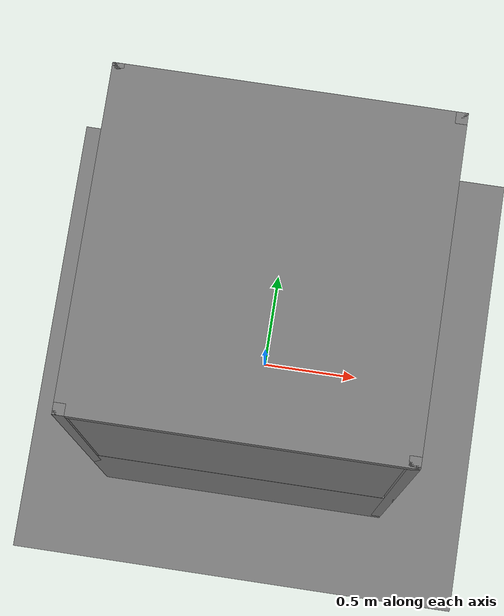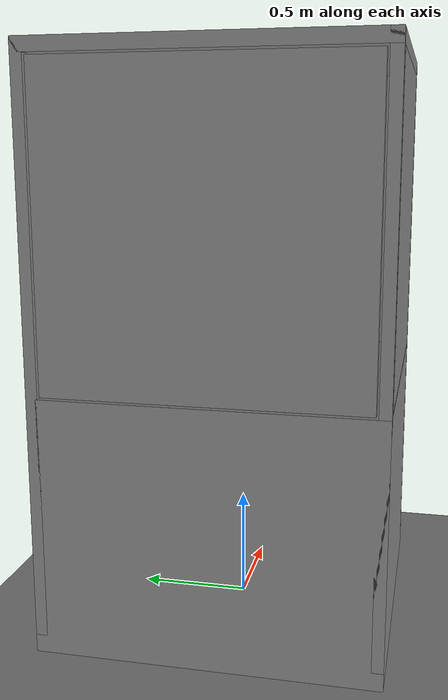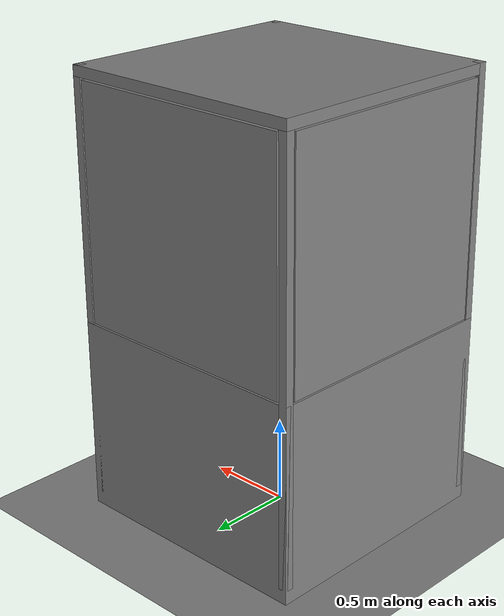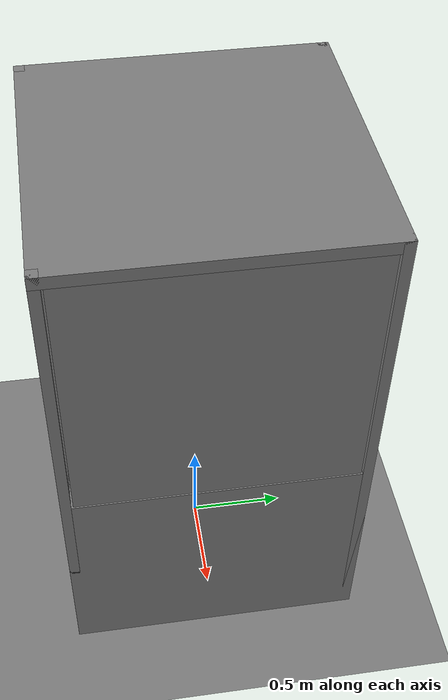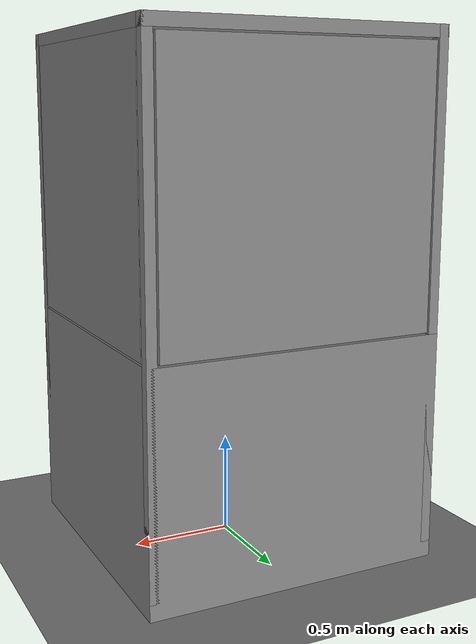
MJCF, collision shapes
<mujoco model="aic_world">
  <compiler angle="radian"/>

  <option gravity="0 0 -9.8" magnetic="5.5645e-06 2.28758e-05 -4.23884e-05"/>

  <visual>
    <headlight ambient="0 0 0" diffuse="0 0 0" specular="0 0 0"/>
  </visual>

  <default>
    <default class="world_default"/>
    <default class="cable_default">
      <joint damping="0.2"/>
    </default>
    <default class="sc_port_default">
      <geom friction="0.5 0.5"/>
    </default>
    <default class="nic_card_default">
      <geom friction="0.1 0.005 0.1"/>
    </default>
  </default>

  <extension>
    <plugin plugin="mujoco.elasticity.cable">
      <instance name="composite">
        <config key="twist" value="1e2"/>
        <config key="bend" value="4e1"/>
      </instance>
    </plugin>
  </extension>

  <asset>
    <texture type="2d" colorspace="linear" name="texture_004c99bdba6ed245cd977ad2f24fce7b24967b1013515a98fda1c10cb547bb0b_floor_visual_Plane" file="004c99bdba6ed245cd977ad2f24fce7b24967b1013515a98fda1c10cb547bb0b_floor_visual_b3a94635-54d6beff6424435d3828cb4c8a1278d9ea3964b0.png"/>
    <texture type="2d" colorspace="linear" name="texture_20c3c21d33ad91c02acd28d29c6619e4def43e4ad97f9963f1f40c69556a8667_nic_card_visual_merged_0" file="20c3c21d33ad91c02acd28d29c6619e4def43e4ad97f9963f1f40c69556a8667_nic_card_visual_45ced356-decb3c11fd49e8be2155fa2b1c64d354b4b1809a.png"/>
    <texture type="2d" colorspace="linear" name="texture_20c3c21d33ad91c02acd28d29c6619e4def43e4ad97f9963f1f40c69556a8667_nic_card_visual_merged_1" file="20c3c21d33ad91c02acd28d29c6619e4def43e4ad97f9963f1f40c69556a8667_nic_card_visual_39dce63a-b1ab28e3f7e42255c5bb13a337e50008ebdbcb02.png"/>
    <texture type="2d" colorspace="linear" name="texture_70f18413e443c6ac8bc02b557eb6c2925e90c411d72d13ae42f85ac7d3aa0981_sc_plug_visual_merged_0" file="70f18413e443c6ac8bc02b557eb6c2925e90c411d72d13ae42f85ac7d3aa0981_sc_plug_visual_5875f865-48f62b2f4840d852c7f39a01e6c183037dc1485b.png"/>
    <texture type="2d" colorspace="linear" name="texture_6d489da5295e168562f19bbb4c2b9fbdac898c9ba5e02eb997d4ee70d7291580_lc_plug_visual_merged_0" file="6d489da5295e168562f19bbb4c2b9fbdac898c9ba5e02eb997d4ee70d7291580_lc_plug_visual_03dabf32-0905e8a8aa368516e682f6ec84258100cdb4efef.png"/>
    <texture type="2d" colorspace="linear" name="texture_2564bbe0f5722ff8251bd203ef80c312faa7946fac1e29b125ba85a355c0acc4_sfp_module_visual_Body.005" file="2564bbe0f5722ff8251bd203ef80c312faa7946fac1e29b125ba85a355c0acc4_sfp_module_visual_8fc63b58-7471eafc55dcb668ae68adfe70a147b363ba3be9.png"/>
    <texture type="2d" colorspace="linear" name="texture_2564bbe0f5722ff8251bd203ef80c312faa7946fac1e29b125ba85a355c0acc4_sfp_module_visual_Body.005_1" file="2564bbe0f5722ff8251bd203ef80c312faa7946fac1e29b125ba85a355c0acc4_sfp_module_visual_1f09e86a-a4dc4a72bd6e778067310898a5c179607fd78966.png"/>
    <material name="material_2d9391f98201003f225acde4d09d36aa89e5d4dc4e11c4b1d33184f277d08bb1_enclosure_visual_V1014952.001" class="world_default" shininess="30" rgba="0.290196 0.290196 0.290196 1"/>
    <material name="material_2d9391f98201003f225acde4d09d36aa89e5d4dc4e11c4b1d33184f277d08bb1_enclosure_visual_V1014952.001_1" class="world_default" shininess="30" rgba="0.129412 0.129412 0.133333 1"/>
    <material name="material_2d9391f98201003f225acde4d09d36aa89e5d4dc4e11c4b1d33184f277d08bb1_light_visual_Plane.001" class="world_default" shininess="30" rgba="0.5 0.5 0.5 1"/>
    <material name="material_004c99bdba6ed245cd977ad2f24fce7b24967b1013515a98fda1c10cb547bb0b_floor_visual_Plane" class="world_default" texture="texture_004c99bdba6ed245cd977ad2f24fce7b24967b1013515a98fda1c10cb547bb0b_floor_visual_Plane" shininess="30" rgba="0.5 0.5 0.5 1"/>
    <material name="material_004c99bdba6ed245cd977ad2f24fce7b24967b1013515a98fda1c10cb547bb0b_walls_visual_Curve.001" class="world_default" shininess="30" rgba="0.0196078 0.0196078 0.0196078 1"/>
    <material name="material_004c99bdba6ed245cd977ad2f24fce7b24967b1013515a98fda1c10cb547bb0b_walls_visual_merged_1" class="world_default" shininess="30" rgba="0.262745 0.262745 0.262745 1"/>
    <material name="material_004c99bdba6ed245cd977ad2f24fce7b24967b1013515a98fda1c10cb547bb0b_walls_visual_Plane.003_1" class="world_default" shininess="30" rgba="0.8 0.8 0.8 1"/>
    <material name="material_004c99bdba6ed245cd977ad2f24fce7b24967b1013515a98fda1c10cb547bb0b_walls_visual_Plane.002" class="world_default" shininess="30" rgba="0.207843 0.207843 0.207843 1"/>
    <material name="material_fe59c208e1c9f790f73d46922512168041cc2a8447a159d98596e558a7dea8a9_base_visual_ISO_4762_-_M3_x_8.019" class="world_default" shininess="30" rgba="0.0352941 0.0352941 0.0313726 1"/>
    <material name="material_fe59c208e1c9f790f73d46922512168041cc2a8447a159d98596e558a7dea8a9_base_visual_ISO_4762_-_M3_x_8.019_1" class="world_default" shininess="30" rgba="0.0313726 0.0313726 0.0313726 1"/>
    <material name="material_fe59c208e1c9f790f73d46922512168041cc2a8447a159d98596e558a7dea8a9_base_visual_ISO_4762_-_M3_x_8.019_2" class="world_default" shininess="30" rgba="0.215686 0 0.215686 1"/>
    <material name="material_20c3c21d33ad91c02acd28d29c6619e4def43e4ad97f9963f1f40c69556a8667_nic_card_mount_visual_ISO_4762_-_M2_x_8.054" class="world_default" shininess="30" rgba="0.0352941 0.0352941 0.0313726 1"/>
    <material name="material_20c3c21d33ad91c02acd28d29c6619e4def43e4ad97f9963f1f40c69556a8667_nic_card_mount_visual_ISO_4762_-_M2_x_8.054_1" class="world_default" shininess="30" rgba="0.0313726 0.0313726 0.0313726 1"/>
    <material name="material_20c3c21d33ad91c02acd28d29c6619e4def43e4ad97f9963f1f40c69556a8667_nic_card_visual_merged_0" class="world_default" texture="texture_20c3c21d33ad91c02acd28d29c6619e4def43e4ad97f9963f1f40c69556a8667_nic_card_visual_merged_0" shininess="30" rgba="0.5 0.5 0.5 1"/>
    <material name="material_20c3c21d33ad91c02acd28d29c6619e4def43e4ad97f9963f1f40c69556a8667_nic_card_visual_merged_1" class="world_default" texture="texture_20c3c21d33ad91c02acd28d29c6619e4def43e4ad97f9963f1f40c69556a8667_nic_card_visual_merged_1" shininess="30" rgba="0.5 0.5 0.5 1"/>
    <material name="material_20c3c21d33ad91c02acd28d29c6619e4def43e4ad97f9963f1f40c69556a8667_nic_card_visual_Plane.029" class="world_default" shininess="30" rgba="0.0235294 0.0392157 0.0117647 1"/>
    <material name="material_20c3c21d33ad91c02acd28d29c6619e4def43e4ad97f9963f1f40c69556a8667_nic_card_visual_Cube.007" class="world_default" shininess="30" rgba="0 0 0 1"/>
    <material name="material_70f18413e443c6ac8bc02b557eb6c2925e90c411d72d13ae42f85ac7d3aa0981_sc_plug_visual_merged_0" class="world_default" texture="texture_70f18413e443c6ac8bc02b557eb6c2925e90c411d72d13ae42f85ac7d3aa0981_sc_plug_visual_merged_0" shininess="30" rgba="0.5 0.5 0.5 1"/>
    <material name="material_6d489da5295e168562f19bbb4c2b9fbdac898c9ba5e02eb997d4ee70d7291580_lc_plug_visual_merged_0" class="world_default" texture="texture_6d489da5295e168562f19bbb4c2b9fbdac898c9ba5e02eb997d4ee70d7291580_lc_plug_visual_merged_0" shininess="30" rgba="0.5 0.5 0.5 1"/>
    <material name="material_2564bbe0f5722ff8251bd203ef80c312faa7946fac1e29b125ba85a355c0acc4_sfp_module_visual_Body.005" class="world_default" texture="texture_2564bbe0f5722ff8251bd203ef80c312faa7946fac1e29b125ba85a355c0acc4_sfp_module_visual_Body.005" shininess="30" rgba="0.5 0.5 0.5 1"/>
    <material name="material_2564bbe0f5722ff8251bd203ef80c312faa7946fac1e29b125ba85a355c0acc4_sfp_module_visual_Body.005_1" class="world_default" texture="texture_2564bbe0f5722ff8251bd203ef80c312faa7946fac1e29b125ba85a355c0acc4_sfp_module_visual_Body.005_1" shininess="30" rgba="0.5 0.5 0.5 1"/>
    <mesh name="2d9391f98201003f225acde4d09d36aa89e5d4dc4e11c4b1d33184f277d08bb1_enclosure_visual_V1014952.001" class="world_default" content_type="model/obj" file="2d9391f98201003f225acde4d09d36aa89e5d4dc4e11c4b1d33184f277d08bb1_enclosure_visual_V1014952.001-c990efe7b9dfe87aa065fd6eb3960ce051ae2aef.obj" inertia="shell"/>
    <mesh name="2d9391f98201003f225acde4d09d36aa89e5d4dc4e11c4b1d33184f277d08bb1_enclosure_visual_V1014952.001_1" class="world_default" content_type="model/obj" file="2d9391f98201003f225acde4d09d36aa89e5d4dc4e11c4b1d33184f277d08bb1_enclosure_visual_V1014952.001_1-807e07de06af157c84b994a232617507a7059420.obj" inertia="shell"/>
    <mesh name="2d9391f98201003f225acde4d09d36aa89e5d4dc4e11c4b1d33184f277d08bb1_light_visual_Plane.001" class="world_default" content_type="model/obj" file="2d9391f98201003f225acde4d09d36aa89e5d4dc4e11c4b1d33184f277d08bb1_light_visual_Plane.001-a8a774a80bc239d73769a498eae528b206eebcb0.obj" inertia="shell"/>
    <mesh name="004c99bdba6ed245cd977ad2f24fce7b24967b1013515a98fda1c10cb547bb0b_floor_visual_Plane" class="world_default" content_type="model/obj" file="004c99bdba6ed245cd977ad2f24fce7b24967b1013515a98fda1c10cb547bb0b_floor_visual_Plane-4dc7f6150ad7c239769a0860a01efb2015657aea.obj" inertia="shell"/>
    <mesh name="004c99bdba6ed245cd977ad2f24fce7b24967b1013515a98fda1c10cb547bb0b_walls_visual_Curve.001" class="world_default" content_type="model/obj" file="004c99bdba6ed245cd977ad2f24fce7b24967b1013515a98fda1c10cb547bb0b_walls_visual_Curve.001-4d7c79ac2e958832fdb15589262141ca1b80d3a5.obj" inertia="shell"/>
    <mesh name="004c99bdba6ed245cd977ad2f24fce7b24967b1013515a98fda1c10cb547bb0b_walls_visual_merged_1" class="world_default" content_type="model/obj" file="004c99bdba6ed245cd977ad2f24fce7b24967b1013515a98fda1c10cb547bb0b_walls_visual_merged_1-359a22140d528747936e80bedf90e1437a177a9f.obj" inertia="shell"/>
    <mesh name="004c99bdba6ed245cd977ad2f24fce7b24967b1013515a98fda1c10cb547bb0b_walls_visual_Plane.003_1" class="world_default" content_type="model/obj" file="004c99bdba6ed245cd977ad2f24fce7b24967b1013515a98fda1c10cb547bb0b_walls_visual_Plane.003_1-cd05ed21fa19a2784fb772d7519abf7c31c8b85f.obj" inertia="shell"/>
    <mesh name="004c99bdba6ed245cd977ad2f24fce7b24967b1013515a98fda1c10cb547bb0b_walls_visual_Plane.002" class="world_default" content_type="model/obj" file="004c99bdba6ed245cd977ad2f24fce7b24967b1013515a98fda1c10cb547bb0b_walls_visual_Plane.002-ee4f781765eec46c2256d941981732d4b1857f24.obj" inertia="shell"/>
    <mesh name="fe59c208e1c9f790f73d46922512168041cc2a8447a159d98596e558a7dea8a9_base_visual_ISO_4762_-_M3_x_8.019" class="world_default" content_type="model/obj" file="fe59c208e1c9f790f73d46922512168041cc2a8447a159d98596e558a7dea8a9_base_visual_ISO_4762_-_M3_x_8.019-f814bb518c42769543ab6246809f3fe4af5c2b64.obj" inertia="shell"/>
    <mesh name="fe59c208e1c9f790f73d46922512168041cc2a8447a159d98596e558a7dea8a9_base_visual_ISO_4762_-_M3_x_8.019_1" class="world_default" content_type="model/obj" file="fe59c208e1c9f790f73d46922512168041cc2a8447a159d98596e558a7dea8a9_base_visual_ISO_4762_-_M3_x_8.019_1-0b276ba9910a7642121235b62d2afc47c3995782.obj" inertia="shell"/>
    <mesh name="fe59c208e1c9f790f73d46922512168041cc2a8447a159d98596e558a7dea8a9_base_visual_ISO_4762_-_M3_x_8.019_2" class="world_default" content_type="model/obj" file="fe59c208e1c9f790f73d46922512168041cc2a8447a159d98596e558a7dea8a9_base_visual_ISO_4762_-_M3_x_8.019_2-7b96569be9572803417c5650ee83c9c883b44191.obj" inertia="shell"/>
    <mesh name="20c3c21d33ad91c02acd28d29c6619e4def43e4ad97f9963f1f40c69556a8667_nic_card_mount_visual_ISO_4762_-_M2_x_8.054" class="world_default" content_type="model/obj" file="20c3c21d33ad91c02acd28d29c6619e4def43e4ad97f9963f1f40c69556a8667_nic_card_mount_visual_ISO_4762_-_M2_x_8.054-865f98896565b646973302f5cc3bb20e1474682a.obj" inertia="shell"/>
    <mesh name="20c3c21d33ad91c02acd28d29c6619e4def43e4ad97f9963f1f40c69556a8667_nic_card_mount_visual_ISO_4762_-_M2_x_8.054_1" class="world_default" content_type="model/obj" file="20c3c21d33ad91c02acd28d29c6619e4def43e4ad97f9963f1f40c69556a8667_nic_card_mount_visual_ISO_4762_-_M2_x_8.054_1-5adcf23490bd5794ededbd17ac1064f40ca2f1d8.obj" inertia="shell"/>
    <mesh name="20c3c21d33ad91c02acd28d29c6619e4def43e4ad97f9963f1f40c69556a8667_nic_card_visual_merged_0" class="world_default" content_type="model/obj" file="20c3c21d33ad91c02acd28d29c6619e4def43e4ad97f9963f1f40c69556a8667_nic_card_visual_merged_0-b45f6200bfaa68e87732b114c99af8b477e66413.obj" inertia="shell"/>
    <mesh name="20c3c21d33ad91c02acd28d29c6619e4def43e4ad97f9963f1f40c69556a8667_nic_card_visual_merged_1" class="world_default" content_type="model/obj" file="20c3c21d33ad91c02acd28d29c6619e4def43e4ad97f9963f1f40c69556a8667_nic_card_visual_merged_1-0e349b7b61b9f4e172feb5320f1e8146f966f938.obj" inertia="shell"/>
    <mesh name="20c3c21d33ad91c02acd28d29c6619e4def43e4ad97f9963f1f40c69556a8667_nic_card_visual_Plane.029" class="world_default" content_type="model/obj" file="20c3c21d33ad91c02acd28d29c6619e4def43e4ad97f9963f1f40c69556a8667_nic_card_visual_Plane.029-3e628f059a97b4e803370a2b5e0abfcfac063972.obj" inertia="shell"/>
    <mesh name="20c3c21d33ad91c02acd28d29c6619e4def43e4ad97f9963f1f40c69556a8667_nic_card_visual_Cube.007" class="world_default" content_type="model/obj" file="20c3c21d33ad91c02acd28d29c6619e4def43e4ad97f9963f1f40c69556a8667_nic_card_visual_Cube.007-f8fbe4a2582482ceb99cb3e87bdf6d5a3daf05ec.obj" inertia="shell"/>
    <mesh name="70f18413e443c6ac8bc02b557eb6c2925e90c411d72d13ae42f85ac7d3aa0981_sc_plug_visual_merged_0" class="world_default" content_type="model/obj" file="70f18413e443c6ac8bc02b557eb6c2925e90c411d72d13ae42f85ac7d3aa0981_sc_plug_visual_merged_0-67f94accf247f722dd4954d7448d7956402901f2.obj" inertia="shell"/>
    <mesh name="6d489da5295e168562f19bbb4c2b9fbdac898c9ba5e02eb997d4ee70d7291580_lc_plug_visual_merged_0" class="world_default" content_type="model/obj" file="6d489da5295e168562f19bbb4c2b9fbdac898c9ba5e02eb997d4ee70d7291580_lc_plug_visual_merged_0-fdaf59710fc3cc118a7df05add4ff4205edda4ef.obj" inertia="shell"/>
    <mesh name="2564bbe0f5722ff8251bd203ef80c312faa7946fac1e29b125ba85a355c0acc4_sfp_module_visual_Body.005" class="world_default" content_type="model/obj" file="2564bbe0f5722ff8251bd203ef80c312faa7946fac1e29b125ba85a355c0acc4_sfp_module_visual_Body.005-f93147e1e403de321fb70c06a4b1e00f20feb9fd.obj" inertia="shell"/>
    <mesh name="2564bbe0f5722ff8251bd203ef80c312faa7946fac1e29b125ba85a355c0acc4_sfp_module_visual_Body.005_1" class="world_default" content_type="model/obj" file="2564bbe0f5722ff8251bd203ef80c312faa7946fac1e29b125ba85a355c0acc4_sfp_module_visual_Body.005_1-4af964a95522e2593eb6381eca4f09ef239782c7.obj" inertia="shell"/>
  </asset>

  <worldbody>
    <light name="enclosure_light" class="world_default" pos="0 0 2.5" dir="0 0 -1" intensity="0.4" range="2" attenuation="1 0.01 0.001" cutoff="114.592" exponent="0.993023" diffuse="1 1 1" specular="0.1 0.1 0.1"/>
    <light name="ceiling_01" class="world_default" pos="2 2 6" dir="0 0 -1" intensity="2" range="9" castshadow="false" attenuation="1 0.01 0.001" cutoff="360" diffuse="1 1 1" specular="0.1 0.1 0.1"/>
    <light name="ceiling_02" class="world_default" pos="-2 -2 6" dir="0 0 -1" intensity="2" range="9" castshadow="false" attenuation="1 0.01 0.001" cutoff="360" diffuse="1 1 1" specular="0.1 0.1 0.1"/>
    <body name="enclosure_link">
      <inertial pos="0 0 0" mass="1" diaginertia="1 1 1"/>
      <geom name="v1015026001_collider_box" class="world_default" size="0.75 0.569492 0.75" pos="-0.010998 0.009283 0.569706" quat="1.22475e-07 -1.22474e-07 0.707107 0.707107" type="box" group="3"/>
      <geom name="v1015028001_collider_box" class="world_default" size="0.0254 0.0254 1.25" pos="0.713602 0.733883 1.3292" quat="1.73205e-07 0 0 -1" type="box" group="3"/>
      <geom name="v1015013001_collider_box" class="world_default" size="0.0304 0.75 0.75" pos="-0.010998 0.009283 2.5488" quat="0.707107 0 -0.707107 0" type="box" group="3"/>
      <geom name="v1015027_collider_box" class="world_default" size="0.0254 0.0254 1.25" pos="-0.735598 0.733883 1.3292" quat="1.73205e-07 0 0 -1" type="box" group="3"/>
      <geom name="v1015029_collider_box" class="world_default" size="0.0254 0.0254 1.25" pos="-0.735598 -0.715317 1.3292" quat="0 1.73205e-07 -1 -1.73205e-07" type="box" group="3"/>
      <geom name="v1015030_collider_box" class="world_default" size="0.0254 0.0254 1.25" pos="0.713602 -0.715317 1.3292" quat="1.73205e-07 0 0 -1" type="box" group="3"/>
      <geom name="enclosure_visual" class="world_default" type="mesh" contype="0" conaffinity="0" material="material_2d9391f98201003f225acde4d09d36aa89e5d4dc4e11c4b1d33184f277d08bb1_enclosure_visual_V1014952.001" mesh="2d9391f98201003f225acde4d09d36aa89e5d4dc4e11c4b1d33184f277d08bb1_enclosure_visual_V1014952.001"/>
      <geom name="enclosure_visual_0" class="world_default" type="mesh" contype="0" conaffinity="0" material="material_2d9391f98201003f225acde4d09d36aa89e5d4dc4e11c4b1d33184f277d08bb1_enclosure_visual_V1014952.001_1" mesh="2d9391f98201003f225acde4d09d36aa89e5d4dc4e11c4b1d33184f277d08bb1_enclosure_visual_V1014952.001_1"/>
      <geom name="light_visual" class="world_default" type="mesh" contype="0" conaffinity="0" material="material_2d9391f98201003f225acde4d09d36aa89e5d4dc4e11c4b1d33184f277d08bb1_light_visual_Plane.001" mesh="2d9391f98201003f225acde4d09d36aa89e5d4dc4e11c4b1d33184f277d08bb1_light_visual_Plane.001"/>
    </body>
    <body name="enclosure_walls_link">
      <inertial pos="0 0 0" mass="1" diaginertia="1 1 1"/>
      <geom name="v1015062006_collider_box" class="world_default" size="0.0250005 0.6796 0.6892" pos="-0.010998 0.734284 1.8288" quat="0.5 0.5 -0.5 -0.5" type="box" group="3"/>
      <geom name="v1015062005_collider_box" class="world_default" size="0.6892 0.6796 0.025" pos="-0.735998 0.009283 1.8288" quat="0.5 0.5 -0.5 -0.5" type="box" group="3"/>
      <geom name="v1015062007_collider_box" class="world_default" size="0.025 0.6846 0.6892" pos="-0.010998 -0.715717 1.8338" quat="0.5 0.5 -0.5 -0.5" type="box" group="3"/>
      <geom name="v1015062008_collider_box" class="world_default" size="0.6892 0.6846 0.025" pos="0.714002 0.009283 1.8338" quat="0.5 0.5 -0.5 -0.5" type="box" group="3"/>
    </body>
    <body name="floor_link">
      <inertial pos="0 0 0" mass="1" diaginertia="1 1 1"/>
      <geom name="floor_cylinder" class="world_default" size="5 5 1" type="plane" group="3"/>
      <geom name="floor_visual" class="world_default" type="mesh" contype="0" conaffinity="0" material="material_004c99bdba6ed245cd977ad2f24fce7b24967b1013515a98fda1c10cb547bb0b_floor_visual_Plane" mesh="004c99bdba6ed245cd977ad2f24fce7b24967b1013515a98fda1c10cb547bb0b_floor_visual_Plane"/>
      <geom name="walls_visual" class="world_default" type="mesh" contype="0" conaffinity="0" material="material_004c99bdba6ed245cd977ad2f24fce7b24967b1013515a98fda1c10cb547bb0b_walls_visual_Curve.001" mesh="004c99bdba6ed245cd977ad2f24fce7b24967b1013515a98fda1c10cb547bb0b_walls_visual_Curve.001"/>
      <geom name="walls_visual_0" class="world_default" type="mesh" contype="0" conaffinity="0" material="material_004c99bdba6ed245cd977ad2f24fce7b24967b1013515a98fda1c10cb547bb0b_walls_visual_merged_1" mesh="004c99bdba6ed245cd977ad2f24fce7b24967b1013515a98fda1c10cb547bb0b_walls_visual_merged_1"/>
      <geom name="walls_visual_1" class="world_default" type="mesh" contype="0" conaffinity="0" material="material_004c99bdba6ed245cd977ad2f24fce7b24967b1013515a98fda1c10cb547bb0b_walls_visual_Plane.003_1" mesh="004c99bdba6ed245cd977ad2f24fce7b24967b1013515a98fda1c10cb547bb0b_walls_visual_Plane.003_1"/>
      <geom name="walls_visual_2" class="world_default" type="mesh" contype="0" conaffinity="0" material="material_004c99bdba6ed245cd977ad2f24fce7b24967b1013515a98fda1c10cb547bb0b_walls_visual_Plane.002" mesh="004c99bdba6ed245cd977ad2f24fce7b24967b1013515a98fda1c10cb547bb0b_walls_visual_Plane.002"/>
    </body>
    <body name="task_board_base_link" pos="0.15 -0.2 1.14" quat="4.63268e-05 0 0 1">
      <inertial pos="0 0 0" mass="5" diaginertia="0.1 0.1 0.1"/>
      <geom name="task_board_base_link_fixed_joint_lump__v1015083001_collider_box_left_collision" class="world_default" size="0.15 0.114 0.0045" pos="0 -0.1 0.0075" type="box" group="3"/>
      <geom name="task_board_base_link_fixed_joint_lump__v1015083001_collider_right_collision_1" class="world_default" size="0.15 0.0635 0.0045" pos="0 0.149 0.0075" type="box" group="3"/>
      <geom name="task_board_base_link_fixed_joint_lump__v1015083001_collider_mid_collision_2" class="world_default" size="0.07 0.006 0.0045" pos="-0.075 0.05 0.0075" type="box" group="3"/>
      <geom name="task_board_base_link_fixed_joint_lump__v1015083001_collider_bottom_collision_3" class="world_default" size="0.0825 0.2125 0.0045" pos="0.068 0 0.0075" type="box" group="3"/>
      <geom name="task_board_base_link_fixed_joint_lump__v1015083001_collider_top_collision_4" class="world_default" size="0.0075 0.2125 0.0045" pos="-0.143 0 0.0075" type="box" group="3"/>
      <geom name="task_board_base_link_fixed_joint_lump__base_visual_visual" class="world_default" type="mesh" contype="0" conaffinity="0" material="material_fe59c208e1c9f790f73d46922512168041cc2a8447a159d98596e558a7dea8a9_base_visual_ISO_4762_-_M3_x_8.019" mesh="fe59c208e1c9f790f73d46922512168041cc2a8447a159d98596e558a7dea8a9_base_visual_ISO_4762_-_M3_x_8.019"/>
      <geom name="task_board_base_link_fixed_joint_lump__base_visual_visual_0" class="world_default" type="mesh" contype="0" conaffinity="0" material="material_fe59c208e1c9f790f73d46922512168041cc2a8447a159d98596e558a7dea8a9_base_visual_ISO_4762_-_M3_x_8.019_1" mesh="fe59c208e1c9f790f73d46922512168041cc2a8447a159d98596e558a7dea8a9_base_visual_ISO_4762_-_M3_x_8.019_1"/>
      <geom name="task_board_base_link_fixed_joint_lump__base_visual_visual_1" class="world_default" type="mesh" contype="0" conaffinity="0" material="material_fe59c208e1c9f790f73d46922512168041cc2a8447a159d98596e558a7dea8a9_base_visual_ISO_4762_-_M3_x_8.019_2" mesh="fe59c208e1c9f790f73d46922512168041cc2a8447a159d98596e558a7dea8a9_base_visual_ISO_4762_-_M3_x_8.019_2"/>
      <body name="nic_card_mount_0::nic_card_mount_link" childclass="nic_card_default" pos="-0.081418 -0.1745 0.012">
        <inertial pos="0 0 0" mass="1" diaginertia="1 1 1"/>
        <geom name="v1015085006_collider_box" class="world_default" size="0.0025035 0.036998 0.0775" pos="0.006002 -0.025497 0.0875" quat="0.707107 0 0 0.707107" type="box" group="3"/>
        <geom name="v1015085006_collider_box.001" class="world_default" size="0.0125 0.01075 0.007" pos="-0.0555 -0.0155 0.172" quat="0.707107 0 0 0.707107" type="box" group="3"/>
        <geom name="v1015085006_collider_box.002" class="world_default" size="0.01375 0.002532 0.0515" pos="0.038535 -0.01425 0.1155" quat="0.707107 0 0 0.707107" type="box" group="3"/>
        <geom name="v1015085006_collider_box.003" class="world_default" size="0.010003 0.044894 0.0075" pos="-0.001997 -0.017997 0.0075" quat="0.707107 0 0 0.707107" type="box" group="3"/>
        <geom name="v1015085006_collider_box004_collider_box" class="world_default" size="0.0025005 0.02575 0.0075" pos="-0.042132 -0.025499 0.151803" quat="0.653335 0.270468 0.270468 0.653335" type="box" group="3"/>
        <geom name="v1015085006_collider_box.005" class="world_default" size="0.008 0.01 0.0075" pos="-0.043 -0.0198 0.1665" quat="0.65401 0.268834 0.268834 0.654009" type="box" group="3"/>
        <geom name="v1015085011_collider_box" class="world_default" size="0.0078345 0.031 0.0025" pos="3e-06 -0.004871 0.0025" quat="0.707107 0 0 0.707107" type="box" group="3"/>
        <geom name="nic_card_mount_visual" class="world_default" type="mesh" contype="0" conaffinity="0" material="material_20c3c21d33ad91c02acd28d29c6619e4def43e4ad97f9963f1f40c69556a8667_nic_card_mount_visual_ISO_4762_-_M2_x_8.054" mesh="20c3c21d33ad91c02acd28d29c6619e4def43e4ad97f9963f1f40c69556a8667_nic_card_mount_visual_ISO_4762_-_M2_x_8.054"/>
        <geom name="nic_card_mount_visual_0" class="world_default" type="mesh" contype="0" conaffinity="0" material="material_20c3c21d33ad91c02acd28d29c6619e4def43e4ad97f9963f1f40c69556a8667_nic_card_mount_visual_ISO_4762_-_M2_x_8.054_1" mesh="20c3c21d33ad91c02acd28d29c6619e4def43e4ad97f9963f1f40c69556a8667_nic_card_mount_visual_ISO_4762_-_M2_x_8.054_1"/>
        <body name="nic_card_link" pos="-0.002 -0.01785 0.0899" quat="0.707388 -0.706825 0 0">
          <inertial pos="0.00150732 -0.00850988 0.00340281" quat="0.506895 0.50066 -0.499024 0.493328" mass="0.15" diaginertia="0.000228137 0.000185186 4.94971e-05"/>
          <geom name="pcb_collider_box" class="world_default" size="0.028 0.0725 0.0008" pos="0 0 -0.0008" type="box" group="3"/>
          <geom name="pcb_collider_box.001" class="world_default" size="0.0345 0.0255 0.0008" pos="0.0065 -0.0025 -0.0008" type="box" group="3"/>
          <geom name="pcb_collider_box.002" class="world_default" size="0.032 0.04775 0.0008" pos="0.004 -0.02475 -0.0008" type="box" group="3"/>
          <geom name="cylinder015_collider_cylinder" class="world_default" size="0.00268 0.002757" pos="0.03175 -0.063 -0.000988" type="cylinder" group="3"/>
          <geom name="cylinder017_collider_cylinder" class="world_default" size="0.00268 0.002759" pos="-0.02225 -0.0675 -0.000986" type="cylinder" group="3"/>
          <geom name="pcb001_collider_box" class="world_default" size="0.005125 0.005125 0.0023015" pos="0.015105 0.054161 0.001899" type="box" group="3"/>
          <geom name="pcb024_collider_box" class="world_default" size="0.0034 0.0034 0.002162" pos="-0.015586 0.055516 0.001759" type="box" group="3"/>
          <geom name="pcb033_collider_box" class="world_default" size="0.021537 0.0208075 0.0011515" pos="-0.002297 0.046302 0.000749" type="box" group="3"/>
          <geom name="cube001_collider_box" class="world_default" size="0.002 0.07 0.00575" pos="0.025006 -0.00041 0.00575" type="box" group="3"/>
          <geom name="cube001_collider_box.001" class="world_default" size="0.0235 0.026 0.0055" pos="-0.0029 -0.0015 0.008" type="box" group="3"/>
          <geom name="10099100-011lfc001_collider_box" class="world_default" size="0.0005495 0.02436 0.0055415" pos="-0.018049 -0.052954 0.00548" quat="0.00675028 0.999977 0 0" type="box" group="3"/>
          <geom name="10099100-011lfc001_collider_box.001" class="world_default" size="0.0005625 0.02436 0.0055605" pos="-0.002437 -0.052954 0.005461" quat="0.00675028 0.999977 0 0" type="box" group="3"/>
          <geom name="10099100-011lfc001_collider_box.002" class="world_default" size="0.008112 0.02436 0.0004615" pos="-0.010237 -0.052889 0.010484" quat="0.00675028 0.999977 0 0" type="box" group="3"/>
          <geom name="10099100-011lfc001_collider_box.003" class="world_default" size="0.008112 0.02436 0.000527" pos="-0.010237 -0.053024 4.6e-05" quat="0.00675028 0.999977 0 0" type="box" group="3"/>
          <geom name="10099100-011lfc001_collider_box.004" class="world_default" size="0.008112 0.000125 0.006849" pos="-0.010237 -0.028738 0.003845" quat="0.00675028 0.999977 0 0" type="box" group="3"/>
          <geom name="10099100-011lfc001_collider_box.005" class="world_default" size="0.0005495 0.02436 0.0055415" pos="0.005151 -0.052954 0.00548" quat="0.00675028 0.999977 0 0" type="box" group="3"/>
          <geom name="10099100-011lfc001_collider_box.006" class="world_default" size="0.0005625 0.02436 0.0055605" pos="0.020763 -0.052954 0.005461" quat="0.00675028 0.999977 0 0" type="box" group="3"/>
          <geom name="10099100-011lfc001_collider_box.007" class="world_default" size="0.008112 0.02436 0.0004615" pos="0.012963 -0.052889 0.010484" quat="0.00675028 0.999977 0 0" type="box" group="3"/>
          <geom name="10099100-011lfc001_collider_box.008" class="world_default" size="0.008112 0.02436 0.000527" pos="0.012963 -0.053024 4.6e-05" quat="0.00675028 0.999977 0 0" type="box" group="3"/>
          <geom name="10099100-011lfc001_collider_box.009" class="world_default" size="0.008112 0.000125 0.006849" pos="0.012963 -0.028738 0.003845" quat="0.00675028 0.999977 0 0" type="box" group="3"/>
          <geom name="plane001_collider_box" class="world_default" size="0.056701 0.0004375 0.0017245" pos="-0.007649 -0.074646 -0.000751" type="box" group="3"/>
          <geom name="plane001_collider_box.001" class="world_default" size="0.056701 0.0004375 0.002505" pos="-0.007649 -0.074646 0.01352" type="box" group="3"/>
          <geom name="plane001_collider_box.002" class="world_default" size="0.0180905 0.0004375 0.0055615" pos="0.038559 -0.074646 0.006455" type="box" group="3"/>
          <geom name="plane001_collider_box.003" class="world_default" size="0.023089 0.0004375 0.0055615" pos="-0.041261 -0.074646 0.006455" type="box" group="3"/>
          <geom name="plane001_collider_box.004" class="world_default" size="0.0004375 0.00635 0.0105" pos="-0.063913 -0.080558 0.005525" type="box" group="3"/>
          <geom name="plane001_collider_box.005" class="world_default" size="0.032 0.007498 0.0012375" pos="0.004 -0.067206 -0.001238" type="box" group="3"/>
          <geom name="cube001_collider_box.002" class="world_default" size="0.0215 0.024 0.0015745" pos="-0.0029 -0.0015 0.001228" type="box" group="3"/>
          <geom name="plane001_collider_box.006" class="world_default" size="0.038092 0.001584 0.0004385" pos="-0.005942 -0.073499 0.015586" type="box" group="3"/>
          <geom name="contact_collision_01" class="world_default" size="0.004056 0.000125 0.00125" pos="0.012963 -0.0305 0.002845" quat="0.00675028 0.999977 0 0" type="box" group="3"/>
          <geom name="contact_collision_02" class="world_default" size="0.004056 0.000125 0.00125" pos="-0.010237 -0.0305 0.002845" quat="0.00675028 0.999977 0 0" type="box" group="3"/>
          <geom name="contact_collision_01_holder" class="world_default" size="0.004056 0.000125 0.001" pos="0.012963 -0.03 0.008" quat="0.00675028 0.999977 0 0" type="box" group="3"/>
          <geom name="contact_collision_02_holder" class="world_default" size="0.004056 0.000125 0.001" pos="-0.010237 -0.03 0.008" quat="0.00675028 0.999977 0 0" type="box" group="3"/>
          <geom name="nic_card_visual" class="world_default" type="mesh" contype="0" conaffinity="0" material="material_20c3c21d33ad91c02acd28d29c6619e4def43e4ad97f9963f1f40c69556a8667_nic_card_visual_merged_0" mesh="20c3c21d33ad91c02acd28d29c6619e4def43e4ad97f9963f1f40c69556a8667_nic_card_visual_merged_0"/>
          <geom name="nic_card_visual_0" class="world_default" type="mesh" contype="0" conaffinity="0" material="material_20c3c21d33ad91c02acd28d29c6619e4def43e4ad97f9963f1f40c69556a8667_nic_card_visual_merged_1" mesh="20c3c21d33ad91c02acd28d29c6619e4def43e4ad97f9963f1f40c69556a8667_nic_card_visual_merged_1"/>
          <geom name="nic_card_visual_1" class="world_default" type="mesh" contype="0" conaffinity="0" material="material_20c3c21d33ad91c02acd28d29c6619e4def43e4ad97f9963f1f40c69556a8667_nic_card_visual_Plane.029" mesh="20c3c21d33ad91c02acd28d29c6619e4def43e4ad97f9963f1f40c69556a8667_nic_card_visual_Plane.029"/>
          <geom name="nic_card_visual_2" class="world_default" type="mesh" contype="0" conaffinity="0" material="material_20c3c21d33ad91c02acd28d29c6619e4def43e4ad97f9963f1f40c69556a8667_nic_card_visual_Cube.007" mesh="20c3c21d33ad91c02acd28d29c6619e4def43e4ad97f9963f1f40c69556a8667_nic_card_visual_Cube.007"/>
          <site name="sfp_port_sensor" class="world_default" pos="0 0 0"/>
          <body name="sfp_port_0_link" pos="0.01295 -0.031572 0.00501" quat="0.702339 -0.711842 0 0">
            <inertial pos="0 0 0" mass="1" diaginertia="1 1 1"/>
            <body name="sfp_port_0_link_entrance" pos="0 0 -0.0458">
              <inertial pos="0 0 0" mass="1" diaginertia="1 1 1"/>
            </body>
          </body>
          <body name="sfp_port_1_link" pos="-0.01025 -0.031572 0.00501" quat="0.702339 -0.711842 0 0">
            <inertial pos="0 0 0" mass="1" diaginertia="1 1 1"/>
            <body name="sfp_port_1_link_entrance" pos="0 0 -0.0458">
              <inertial pos="0 0 0" mass="1" diaginertia="1 1 1"/>
            </body>
          </body>
        </body>
      </body>
    </body>
    <body name="cable_end_0" childclass="cable_default" pos="0.171400 0.020606 1.511889" quat="0.712741 0.312130 -0.052173 0.625982">
      <freejoint name="cable_end_0_free"/>
      <inertial pos="0 0 0" mass="0.0025" diaginertia="1e-6 1e-6 1e-6"/>
      <geom name="base_vis" class="world_default" size="0.002" contype="0" conaffinity="0"/>
      <plugin instance="composite"/>
      <body name="cable_connection_0" pos="-1.4406e-08 3.50085e-08 -1.43778e-07" quat="0.828578 -0.0731953 -0.512501 0.213177">
        <inertial pos="0 0 0" mass="0.01" diaginertia="1e-6 1e-6 1e-6"/>
        <joint name="joint_connection_end_0" class="world_default" pos="0 0 0" type="ball" damping="0.2"/>
        <geom name="visual_0_0" class="world_default" size="0.001 0.00180278" pos="-0.00180278 0.002 0" quat="0.676768 0.204909 0.676764 -0.204908" type="cylinder" contype="0" conaffinity="0"/>
        <geom name="visual_1_0" class="world_default" size="0.001 0.00180278" pos="-0.00180278 -0.002 0" quat="0.676768 -0.204909 0.676764 0.204908" type="cylinder" contype="0" conaffinity="0"/>
        <plugin instance="composite"/>
        <body name="link_1" pos="-0.0166248 -0.00412548 -0.0168108" quat="0.329926 -0.278477 -0.879019 0.202299">
          <inertial pos="0 0 0" mass="0.0025" diaginertia="1e-6 1e-6 1e-6"/>
          <joint name="joint_end_0" pos="0 0 -0.024" type="ball"/>
          <geom name="link_1_collision" size="0.002 0.018" pos="0 0 0.006" type="cylinder" group="3"/>
          <geom name="sphere_1_collision" size="0.002" pos="0 0 0.024" group="3"/>
          <geom name="link_1_vis" size="0.002 0.024" type="cylinder" contype="0" conaffinity="0"/>
          <geom name="sphere_1_vis" size="0.002" pos="0 0 0.024" contype="0" conaffinity="0"/>
          <plugin instance="composite"/>
          <body name="link_2" pos="0.00607539 -0.0044247 0.0467933" quat="0.98684 0.0892122 0.131108 -0.0315914">
            <inertial pos="0 0 0" mass="0.0025" diaginertia="1e-6 1e-6 1e-6"/>
            <joint name="joint_1" pos="0 0 -0.024" type="ball"/>
            <geom name="link_2_collision" size="0.002 0.024" type="cylinder" group="3"/>
            <geom name="sphere_2_collision" size="0.002" pos="0 0 0.024" group="3"/>
            <geom name="link_2_vis" size="0.002 0.024" type="cylinder" contype="0" conaffinity="0"/>
            <geom name="sphere_2_vis" size="0.002" pos="0 0 0.024" contype="0" conaffinity="0"/>
            <plugin instance="composite"/>
            <body name="link_3" pos="-0.000209613 -0.00145909 0.0479549" quat="0.998231 0.0305928 -0.00282394 -0.0509109">
              <inertial pos="0 0 0" mass="0.0025" diaginertia="1e-6 1e-6 1e-6"/>
              <joint name="joint_2" pos="0 0 -0.024" type="ball"/>
              <geom name="link_3_collision" size="0.002 0.024" type="cylinder" group="3"/>
              <geom name="sphere_3_collision" size="0.002" pos="0 0 0.024" group="3"/>
              <geom name="link_3_vis" size="0.002 0.024" type="cylinder" contype="0" conaffinity="0"/>
              <geom name="sphere_3_vis" size="0.002" pos="0 0 0.024" contype="0" conaffinity="0"/>
              <plugin instance="composite"/>
              <body name="link_4" pos="-0.00182347 -0.000359937 0.0479281" quat="0.997642 0.00964916 -0.0375348 -0.0566515">
                <inertial pos="0 0 0" mass="0.0025" diaginertia="1e-6 1e-6 1e-6"/>
                <joint name="joint_3" pos="0 0 -0.024" type="ball"/>
                <geom name="link_4_collision" size="0.002 0.024" type="cylinder" group="3"/>
                <geom name="sphere_4_collision" size="0.002" pos="0 0 0.024" group="3"/>
                <geom name="link_4_vis" size="0.002 0.024" type="cylinder" contype="0" conaffinity="0"/>
                <geom name="sphere_4_vis" size="0.002" pos="0 0 0.024" contype="0" conaffinity="0"/>
                <plugin instance="composite"/>
                <body name="link_5" pos="-0.00269583 -0.000558032 0.0478421" quat="0.996112 0.0153823 -0.0553478 -0.0667944">
                  <inertial pos="0 0 0" mass="0.0025" diaginertia="1e-6 1e-6 1e-6"/>
                  <joint name="joint_4" pos="0 0 -0.024" type="ball"/>
                  <geom name="link_5_collision" size="0.002 0.024" type="cylinder" group="3"/>
                  <geom name="sphere_5_collision" size="0.002" pos="0 0 0.024" group="3"/>
                  <geom name="link_5_vis" size="0.002 0.024" type="cylinder" contype="0" conaffinity="0"/>
                  <geom name="sphere_5_vis" size="0.002" pos="0 0 0.024" contype="0" conaffinity="0"/>
                  <plugin instance="composite"/>
                  <body name="link_6" pos="-0.00338445 -0.00117624 0.0477314" quat="0.993524 0.0305504 -0.0683604 -0.085463">
                    <inertial pos="0 0 0" mass="0.0025" diaginertia="1e-6 1e-6 1e-6"/>
                    <joint name="joint_5" pos="0 0 -0.024" type="ball"/>
                    <geom name="link_6_collision" size="0.002 0.024" type="cylinder" group="3"/>
                    <geom name="sphere_6_collision" size="0.002" pos="0 0 0.024" group="3"/>
                    <geom name="link_6_vis" size="0.002 0.024" type="cylinder" contype="0" conaffinity="0"/>
                    <geom name="sphere_6_vis" size="0.002" pos="0 0 0.024" contype="0" conaffinity="0"/>
                    <plugin instance="composite"/>
                    <body name="link_7" pos="-0.0039757 -0.00216075 0.0475701" quat="0.989333 0.0541853 -0.07766 -0.11069">
                      <inertial pos="0 0 0" mass="0.0025" diaginertia="1e-6 1e-6 1e-6"/>
                      <joint name="joint_6" pos="0 0 -0.024" type="ball"/>
                      <geom name="link_7_collision" size="0.002 0.024" type="cylinder" group="3"/>
                      <geom name="sphere_7_collision" size="0.002" pos="0 0 0.024" group="3"/>
                      <geom name="link_7_vis" size="0.002 0.024" type="cylinder" contype="0" conaffinity="0"/>
                      <geom name="sphere_7_vis" size="0.002" pos="0 0 0.024" contype="0" conaffinity="0"/>
                      <plugin instance="composite"/>
                      <body name="link_8" pos="-0.00393684 -0.00341161 0.0474285" quat="0.984857 0.0820155 -0.0720661 -0.134675">
                        <inertial pos="0 0 0" mass="0.0025" diaginertia="1e-6 1e-6 1e-6"/>
                        <joint name="joint_7" pos="0 0 -0.024" type="ball"/>
                        <geom name="link_8_collision" size="0.002 0.024" type="cylinder" group="3"/>
                        <geom name="sphere_8_collision" size="0.002" pos="0 0 0.024" group="3"/>
                        <geom name="link_8_vis" size="0.002 0.024" type="cylinder" contype="0" conaffinity="0"/>
                        <geom name="sphere_8_vis" size="0.002" pos="0 0 0.024" contype="0" conaffinity="0"/>
                        <plugin instance="composite"/>
                        <body name="link_9" pos="-0.00297014 -0.00457704 0.0473728" quat="0.982264 0.104217 -0.0472345 -0.148541">
                          <inertial pos="0 0 0" mass="0.0025" diaginertia="1e-6 1e-6 1e-6"/>
                          <joint name="joint_8" pos="0 0 -0.024" type="ball"/>
                          <geom name="link_9_collision" size="0.002 0.024" type="cylinder" group="3"/>
                          <geom name="sphere_9_collision" size="0.002" pos="0 0 0.024" group="3"/>
                          <geom name="link_9_vis" size="0.002 0.024" type="cylinder" contype="0" conaffinity="0"/>
                          <geom name="sphere_9_vis" size="0.002" pos="0 0 0.024" contype="0" conaffinity="0"/>
                          <plugin instance="composite"/>
                          <body name="link_10" pos="-0.00140711 -0.00489521 0.0474533" quat="0.983035 0.10585 -0.0137687 -0.149161">
                            <inertial pos="0 0 0" mass="0.0025" diaginertia="1e-6 1e-6 1e-6"/>
                            <joint name="joint_9" pos="0 0 -0.024" type="ball"/>
                            <geom name="link_10_collision" size="0.002 0.024" type="cylinder" group="3"/>
                            <geom name="sphere_10_collision" size="0.002" pos="0 0 0.024" group="3"/>
                            <geom name="link_10_vis" size="0.002 0.024" type="cylinder" contype="0" conaffinity="0"/>
                            <geom name="sphere_10_vis" size="0.002" pos="0 0 0.024" contype="0" conaffinity="0"/>
                            <plugin instance="composite"/>
                            <body name="link_11" pos="0.00103654 -0.00358103 0.0477098" quat="0.986144 0.0708384 0.0324101 -0.146464">
                              <inertial pos="0 0 0" mass="0.0025" diaginertia="1e-6 1e-6 1e-6"/>
                              <joint name="joint_10" pos="0 0 -0.024" type="ball"/>
                              <geom name="link_11_collision" size="0.002 0.024" type="cylinder" group="3"/>
                              <geom name="sphere_11_collision" size="0.002" pos="0 0 0.024" group="3"/>
                              <geom name="link_11_vis" size="0.002 0.024" type="cylinder" contype="0" conaffinity="0"/>
                              <geom name="sphere_11_vis" size="0.002" pos="0 0 0.024" contype="0" conaffinity="0"/>
                              <plugin instance="composite"/>
                              <body name="link_12" pos="0.00370196 0.000336574 0.0477122" quat="0.990466 -0.0158174 0.0760429 -0.113775">
                                <inertial pos="0 0 0" mass="0.0025" diaginertia="1e-6 1e-6 1e-6"/>
                                <joint name="joint_11" pos="0 0 -0.024" type="ball"/>
                                <geom name="link_12_collision" size="0.002 0.024" type="cylinder" group="3"/>
                                <geom name="sphere_12_collision" size="0.002" pos="0 0 0.024" group="3"/>
                                <geom name="link_12_vis" size="0.002 0.024" type="cylinder" contype="0" conaffinity="0"/>
                                <geom name="sphere_12_vis" size="0.002" pos="0 0 0.024" contype="0" conaffinity="0"/>
                                <plugin instance="composite"/>
                                <body name="link_13" pos="0.00454763 0.00357407 0.0472932" quat="0.989721 -0.0820599 0.0894369 -0.0756246">
                                  <inertial pos="0 0 0" mass="0.0025" diaginertia="1e-6 1e-6 1e-6"/>
                                  <joint name="joint_12" pos="0 0 -0.024" type="ball"/>
                                  <geom name="link_13_collision" size="0.002 0.024" type="cylinder" group="3"/>
                                  <geom name="sphere_13_collision" size="0.002" pos="0 0 0.024" group="3"/>
                                  <geom name="link_13_vis" size="0.002 0.024" type="cylinder" contype="0" conaffinity="0"/>
                                  <geom name="sphere_13_vis" size="0.002" pos="0 0 0.024" contype="0" conaffinity="0"/>
                                  <plugin instance="composite"/>
                                  <body name="link_14" pos="0.00572755 0.00602182 0.0465161" quat="0.983539 -0.132427 0.115734 -0.0414782">
                                    <inertial pos="0 0 0" mass="0.0025" diaginertia="1e-6 1e-6 1e-6"/>
                                    <joint name="joint_13" pos="0 0 -0.024" type="ball"/>
                                    <geom name="link_14_collision" size="0.002 0.024" type="cylinder" group="3"/>
                                    <geom name="sphere_14_collision" size="0.002" pos="0 0 0.024" group="3"/>
                                    <geom name="link_14_vis" size="0.002 0.024" type="cylinder" contype="0" conaffinity="0"/>
                                    <geom name="sphere_14_vis" size="0.002" pos="0 0 0.024" contype="0" conaffinity="0"/>
                                    <plugin instance="composite"/>
                                    <body name="link_15" pos="0.00614199 0.00769041 0.0458898" quat="0.977586 -0.166349 0.127659 -0.0188817">
                                      <inertial pos="0 0 0" mass="0.0025" diaginertia="1e-6 1e-6 1e-6"/>
                                      <joint name="joint_14" pos="0 0 -0.024" type="ball"/>
                                      <geom name="link_15_collision" size="0.002 0.024" type="cylinder" group="3"/>
                                      <geom name="sphere_15_collision" size="0.002" pos="0 0 0.024" group="3"/>
                                      <geom name="link_15_vis" size="0.002 0.024" type="cylinder" contype="0" conaffinity="0"/>
                                      <geom name="sphere_15_vis" size="0.002" pos="0 0 0.024" contype="0" conaffinity="0"/>
                                      <plugin instance="composite"/>
                                      <body name="link_16" pos="0.00647875 0.0087865 0.0453748" quat="0.972208 -0.18962 0.136999 -0.00937117">
                                        <inertial pos="0 0 0" mass="0.0025" diaginertia="1e-6 1e-6 1e-6"/>
                                        <joint name="joint_15" pos="0 0 -0.024" type="ball"/>
                                        <geom name="link_16_collision" size="0.002 0.024" type="cylinder" group="3"/>
                                        <geom name="sphere_16_collision" size="0.002" pos="0 0 0.024" group="3"/>
                                        <geom name="link_16_vis" size="0.002 0.024" type="cylinder" contype="0" conaffinity="0"/>
                                        <geom name="sphere_16_vis" size="0.002" pos="0 0 0.024" contype="0" conaffinity="0"/>
                                        <plugin instance="composite"/>
                                        <body name="link_17" pos="0.00557702 0.00787869 0.045975" quat="0.978531 -0.169652 0.115886 -0.0163073">
                                          <inertial pos="0 0 0" mass="0.0025" diaginertia="1e-6 1e-6 1e-6"/>
                                          <joint name="joint_16" pos="0 0 -0.024" type="ball"/>
                                          <geom name="link_17_collision" size="0.002 0.024" type="cylinder" group="3"/>
                                          <geom name="sphere_17_collision" size="0.002" pos="0 0 0.024" group="3"/>
                                          <geom name="link_17_vis" size="0.002 0.024" type="cylinder" contype="0" conaffinity="0"/>
                                          <geom name="sphere_17_vis" size="0.002" pos="0 0 0.024" contype="0" conaffinity="0"/>
                                          <plugin instance="composite"/>
                                          <body name="link_18" pos="0.0037623 0.00570927 0.0470058" quat="0.988997 -0.122838 0.075014 -0.0342004">
                                            <inertial pos="0 0 0" mass="0.0025" diaginertia="1e-6 1e-6 1e-6"/>
                                            <joint name="joint_17" pos="0 0 -0.024" type="ball"/>
                                            <geom name="link_18_collision" size="0.002 0.024" type="cylinder" group="3"/>
                                            <geom name="sphere_18_collision" size="0.002" pos="0 0 0.024" group="3"/>
                                            <geom name="link_18_vis" size="0.002 0.024" type="cylinder" contype="0" conaffinity="0"/>
                                            <geom name="sphere_18_vis" size="0.002" pos="0 0 0.024" contype="0" conaffinity="0"/>
                                            <plugin instance="composite"/>
                                            <body name="link_19" pos="0.00276775 0.00490839 0.0473301" quat="0.99123 -0.106266 0.0518476 -0.0590159">
                                              <inertial pos="0 0 0" mass="0.0025" diaginertia="1e-6 1e-6 1e-6"/>
                                              <joint name="joint_18" pos="0 0 -0.024" type="ball"/>
                                              <geom name="link_19_collision" size="0.002 0.024" type="cylinder" group="3"/>
                                              <geom name="sphere_19_collision" size="0.002" pos="0 0 0.024" group="3"/>
                                              <geom name="link_19_vis" size="0.002 0.024" type="cylinder" contype="0" conaffinity="0"/>
                                              <geom name="sphere_19_vis" size="0.002" pos="0 0 0.024" contype="0" conaffinity="0"/>
                                              <plugin instance="composite"/>
                                              <body name="link_20" pos="0.0012505 0.00298537 0.0477828" quat="0.994104 -0.0643185 0.0207069 -0.0848051">
                                                <inertial pos="0 0 0" mass="0.0025" diaginertia="1e-6 1e-6 1e-6"/>
                                                <joint name="joint_19" pos="0 0 -0.024" type="ball"/>
                                                <geom name="link_20_collision" size="0.002 0.024" type="cylinder" group="3"/>
                                                <geom name="sphere_20_collision" size="0.002" pos="0 0 0.024" group="3"/>
                                                <geom name="link_20_vis" size="0.002 0.024" type="cylinder" contype="0" conaffinity="0"/>
                                                <geom name="sphere_20_vis" size="0.002" pos="0 0 0.024" contype="0" conaffinity="0"/>
                                                <plugin instance="composite"/>
                                                <body name="cable_connection_1" pos="1.31854e-06 -4.29399e-07 0.0240002" quat="0.734893 -0.114938 -0.666769 -0.0462718">
                                                  <inertial pos="0 0 0" mass="0.01" diaginertia="1e-6 1e-6 1e-6"/>
                                                  <joint name="joint_connection_end_1" class="world_default" pos="0 0 0" type="ball"/>
                                                  <geom name="collision_0" class="world_default" size="0.001 0.00367636" pos="0.00367636 -0.00425 0" quat="0.673802 0.214463 0.673798 -0.214461" type="cylinder" group="3"/>
                                                  <geom name="collision_1" class="world_default" size="0.001 0.00367636" pos="0.00367636 0.00425 0" quat="0.673802 -0.214463 0.673798 0.214461" type="cylinder" group="3"/>
                                                  <geom name="visual_0" class="world_default" size="0.001 0.00367636" pos="0.00367636 -0.00425 0" quat="0.673802 0.214463 0.673798 -0.214461" type="cylinder" contype="0" conaffinity="0"/>
                                                  <geom name="visual_1" class="world_default" size="0.001 0.00367636" pos="0.00367636 0.00425 0" quat="0.673802 -0.214463 0.673798 0.214461" type="cylinder" contype="0" conaffinity="0"/>
                                                  <plugin instance="composite"/>
                                                  <body name="sc_plug_link" pos="0.052 1.15528e-07 9.67143e-08" quat="1 -4.85468e-08 6.45362e-08 -1.3401e-07">
                                                    <inertial pos="-0.00907511 4.9566e-05 8.71699e-06" quat="0.000872542 0.70691 -0.000868656 0.707302" mass="0.04" diaginertia="8.85404e-06 7.17322e-06 2.12253e-06"/>
                                                    <geom name="housing blue_predeterminado005_collider_box" class="world_default" size="0.0063605 0.0045 0.00365" pos="0.002038 0.006344 4e-06" type="box" group="3"/>
                                                    <geom name="housing blue_predeterminado005_collider_box.001" class="world_default" size="0.0063605 0.0045 0.00365" pos="0.002038 -0.006344 4e-06" type="box" group="3"/>
                                                    <geom name="housing blue_predeterminado005_collider_box.002" class="world_default" size="0.006861 0.0035 0.00365" pos="0.002539 0.006344 4e-06" type="box" group="3"/>
                                                    <geom name="housing blue_predeterminado005_collider_box.003" class="world_default" size="0.006861 0.0035 0.00365" pos="0.002539 -0.006344 4e-06" type="box" group="3"/>
                                                    <geom name="housing blue_predeterminado005_collider_box.004" class="world_default" size="0.001 0.000705 0.00365" pos="0.008191 0.003056 4e-06" quat="0.92388 0 0 -0.382683" type="box" group="3"/>
                                                    <geom name="housing blue_predeterminado005_collider_box.005" class="world_default" size="0.001 0.000705 0.00365" pos="0.008191 0.009636 4e-06" quat="0.92388 0 0 0.382683" type="box" group="3"/>
                                                    <geom name="housing blue_predeterminado005_collider_box.006" class="world_default" size="0.001 0.000705 0.00365" pos="0.008191 -0.009636 4e-06" quat="0.92388 0 0 -0.382683" type="box" group="3"/>
                                                    <geom name="housing blue_predeterminado005_collider_box.007" class="world_default" size="0.001 0.000705 0.00365" pos="0.008191 -0.003056 4e-06" quat="0.92388 0 0 0.382683" type="box" group="3"/>
                                                    <geom name="cube002_collider_box" class="world_default" size="0.006275 0.0125 0.00505" pos="-0.010291 0 0" type="box" group="3"/>
                                                    <geom name="cylinder011_collider_cylinder" class="world_default" size="0.0029 0.014605" pos="-0.031147 -0.00635 0" quat="0.707107 0 0.707107 0" type="cylinder" group="3"/>
                                                    <geom name="cylinder005_collider_cylinder" class="world_default" size="0.0029 0.015799" pos="-0.029953 0.00635 0" quat="0.707107 0 0.707107 0" type="cylinder" group="3"/>
                                                    <geom name="ferula_predeterminado005_collider_cylinder" class="world_default" size="0.00125 0.007" pos="0.00465 -0.00635 0" quat="0.707107 0 0.707107 0" type="cylinder" group="3"/>
                                                    <geom name="ferula_predeterminado003_collider_cylinder" class="world_default" size="0.00125 0.007" pos="0.00465 0.00635 0" quat="0.707107 0 0.707107 0" type="cylinder" group="3"/>
                                                    <geom name="side_box_collision" class="world_default" size="0.002125 0.00081 0.0005" pos="0.00146 -0.00632 0.0042" type="box" group="3"/>
                                                    <geom name="side_box_collision_2" class="world_default" size="0.002125 0.00081 0.0005" pos="0.00146 0.00632 0.0042" type="box" group="3"/>
                                                    <geom name="sc_plug_visual" class="world_default" type="mesh" contype="0" conaffinity="0" material="material_70f18413e443c6ac8bc02b557eb6c2925e90c411d72d13ae42f85ac7d3aa0981_sc_plug_visual_merged_0" mesh="70f18413e443c6ac8bc02b557eb6c2925e90c411d72d13ae42f85ac7d3aa0981_sc_plug_visual_merged_0"/>
                                                    <body name="sc_tip_link" pos="0.0116501 -2.02965e-07 -3.55971e-09" quat="0.499999 -0.5 0.500001 -0.5">
                                                      <inertial pos="0 0 0" mass="0.001" diaginertia="1e-06 1e-06 1e-06"/>
                                                    </body>
                                                  </body>
                                                </body>
                                              </body>
                                            </body>
                                          </body>
                                        </body>
                                      </body>
                                    </body>
                                  </body>
                                </body>
                              </body>
                            </body>
                          </body>
                        </body>
                      </body>
                    </body>
                  </body>
                </body>
              </body>
            </body>
          </body>
        </body>
        <body name="lc_plug_link" pos="-0.0409999 5.88178e-09 2.64938e-08" quat="0.707109 -3.25232e-08 8.36341e-08 0.707104">
          <inertial pos="0 0.0197 0" quat="0 0.707107 0 0.707107" mass="0.01" diaginertia="1.06153e-07 9.96094e-08 8.49658e-09"/>
          <geom name="cylinder001_collider_cylinder.001" class="world_default" size="0.000625 0.001502" pos="0.003125 0.0197 0" quat="0.707107 0.707107 0 0" type="cylinder" group="3"/>
          <geom name="cylinder_collider_cylinder.001" class="world_default" size="0.000625 0.001502" pos="-0.003125 0.0197 0" quat="0.707107 0.707107 0 0" type="cylinder" group="3"/>
          <geom name="lc_plug_visual" class="world_default" type="mesh" contype="0" conaffinity="0" material="material_6d489da5295e168562f19bbb4c2b9fbdac898c9ba5e02eb997d4ee70d7291580_lc_plug_visual_merged_0" mesh="6d489da5295e168562f19bbb4c2b9fbdac898c9ba5e02eb997d4ee70d7291580_lc_plug_visual_merged_0"/>
          <body name="sfp_module_link" pos="5.49085e-09 0.0384 -1.10647e-08" quat="8.99127e-08 1 -1.30823e-06 -1.33817e-06">
            <inertial pos="0.00024115 0.00702224 0.000553372" quat="0.510037 0.497012 -0.483415 0.50907" mass="0.02" diaginertia="3.07513e-06 2.81054e-06 5.69919e-07"/>
            <geom name="port_collider_box.008" class="world_default" size="0.00071 0.000503 0.0064415" pos="-0.00571 0.018813 -0.003546" quat="0.707107 0.707107 0 0" type="box" group="3"/>
            <geom name="port_collider_box.009" class="world_default" size="0.00071 0.000503 0.0064415" pos="0.00571 0.018813 -0.003546" quat="0.707107 0.707107 0 0" type="box" group="3"/>
            <geom name="body_collider_box" class="world_default" size="0.006875 0.02365 0.0003945" pos="0 0.001 0.00383" type="box" group="3"/>
            <geom name="body_collider_box.001" class="world_default" size="0.006875 0.02365 8.9e-05" pos="0 0.001 -0.004138" type="box" group="3"/>
            <geom name="body_collider_box.002" class="world_default" size="0.000287 0.02365 0.004225" pos="-0.006588 0.001 0" type="box" group="3"/>
            <geom name="body_collider_box.003" class="world_default" size="0.0004055 0.02365 0.004225" pos="0.00647 0.001 0" type="box" group="3"/>
            <geom name="port_collider_box.010" class="world_default" size="0.00642 0.0038815 0.0058645" pos="0 0.01229 0.000119" quat="0.707107 0.707107 0 0" type="box" group="3"/>
            <geom name="port_collider_box002_collider_box" class="world_default" size="0.00642 0.0002045 0.0008005" pos="0 0.024453 -0.004254" quat="0.707107 0.707107 0 0" type="box" group="3"/>
            <geom name="port_collider_box.011" class="world_default" size="0.00125 0.000503 0.0064415" pos="0 0.018813 -0.003546" quat="0.707107 0.707107 0 0" type="box" group="3"/>
            <geom name="sfp_module_visual" class="world_default" type="mesh" contype="0" conaffinity="0" material="material_2564bbe0f5722ff8251bd203ef80c312faa7946fac1e29b125ba85a355c0acc4_sfp_module_visual_Body.005" mesh="2564bbe0f5722ff8251bd203ef80c312faa7946fac1e29b125ba85a355c0acc4_sfp_module_visual_Body.005"/>
            <geom name="sfp_module_visual_0" class="world_default" type="mesh" contype="0" conaffinity="0" material="material_2564bbe0f5722ff8251bd203ef80c312faa7946fac1e29b125ba85a355c0acc4_sfp_module_visual_Body.005_1" mesh="2564bbe0f5722ff8251bd203ef80c312faa7946fac1e29b125ba85a355c0acc4_sfp_module_visual_Body.005_1"/>
            <body name="sfp_tip_link" pos="-4.36114e-09 -0.02365 -4.66483e-09" quat="0.707105 0.707108 -5.19725e-08 -5.70402e-08">
              <inertial pos="0 0 0" mass="0.001" diaginertia="1e-06 1e-06 1e-06"/>
              <geom name="contact_collision" class="world_default" size="0.006875 0.0021125 0.0005" pos="0 0.0021125 -0.0005" type="box" group="3"/>
              <geom name="non_contact_collision" class="world_default" size="0.006875 0.0021125 0.0005" pos="0 -0.0021125 -0.0005" type="box" group="3"/>
            </body>
          </body>
        </body>
      </body>
    </body>
    <body name="static_link">
      <inertial pos="0 0 0" mass="1" diaginertia="1 1 1"/>
    </body>
    <body name="static_link_0">
      <inertial pos="0 0 0" mass="1" diaginertia="1 1 1"/>
    </body>
  </worldbody>

  <contact>
    <exclude name="task_board_base_link_nic_card_mount_0::nic_card_mount_link" body1="task_board_base_link" body2="nic_card_mount_0::nic_card_mount_link"/>
    <exclude body1="cable_end_0" body2="link_1"/>
  </contact>

  <equality>
    <weld body1="ati/tool_link" body2="lc_plug_link" relpose="-0.000711 0.001759 0.168213 0.577301 0.816105 -0.021418 -0.015395" solref="0.002 1" solimp="0.99 0.999 0.001"/>
  </equality>
</mujoco>
